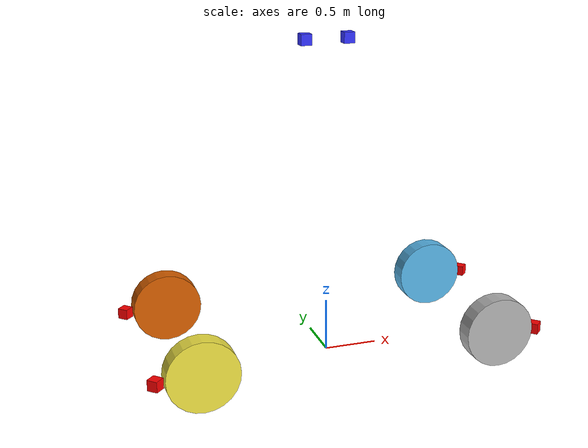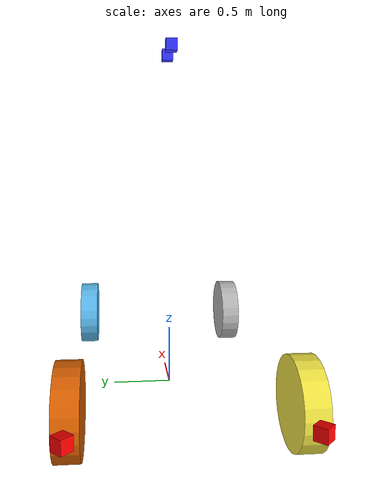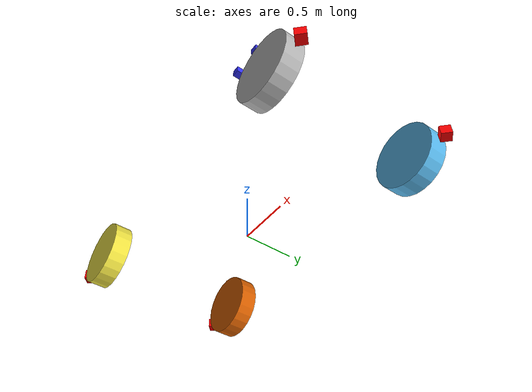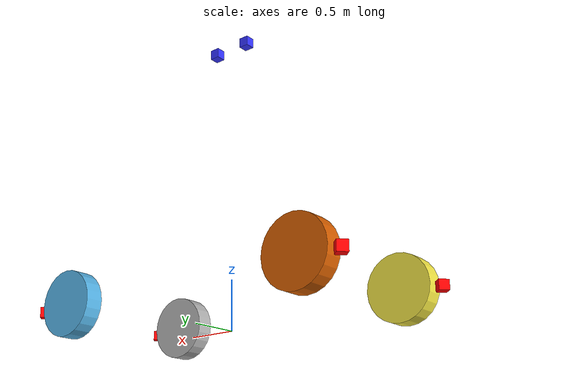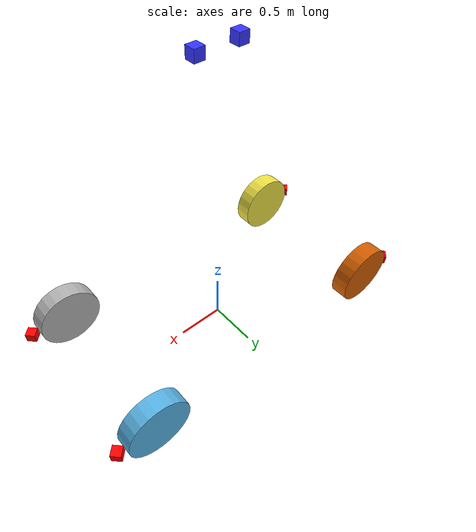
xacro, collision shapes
<?xml version="1.0"?>
<robot xmlns:xacro="http://www.ros.org/wiki/xacro" name="four_wheel_steering_robot">

  <xacro:property name="wheel_base" value="2.8"/>
  <xacro:property name="wheel_track" value="1.385"/>
  <xacro:property name="wheel_radius" value="0.3"/>
  <xacro:property name="max_steering_angle" value="0.31"/>
  <xacro:property name="min_steering_angle" value="-0.31"/>
  <xacro:property name="base_mass" value="1703.239"/> <!-- Mass value is incorrect as the intertias are wrong-->
  <xacro:property name="tyre_x" value="1.05"/>
  <xacro:property name="tyre_front_x" value="1.40"/>
  <xacro:property name="tyre_back_x" value="-1.40"/>
  <xacro:property name="tyre_y" value="0.6925"/>
  <xacro:property name="tyre_r" value="0"/>
  <xacro:property name="PI" value="3.1415926835897931"/>
  <!--Below is the thickness of the car's tyre-->
  <xacro:property name="tyre_length" value="0.18"/>

  <xacro:property name="tyre_radius" value="0.33"/>
  <xacro:property name="tyre_mass" value="20"/>

  <xacro:property name="tyre_mass_ixx" value="${((1/2)*tyre_mass*tyre_radius*tyre_radius)}"/>
  <xacro:property name="tyre_mass_iyy" value="${((1/12)*tyre_mass*tyre_length*tyre_length) + ((1/4)*tyre_mass*tyre_radius*tyre_radius)}"/>
  <xacro:property name="tyre_mass_izz" value="${((1/12)*tyre_mass*tyre_length*tyre_length) + ((1/4)*tyre_mass*tyre_radius*tyre_radius)}"/>
  <xacro:property name="tyre_mass_ixz" value="0.0"/>
  <xacro:property name="tyre_mass_ixy" value="0.0"/>
  <xacro:property name="tyre_mass_iyz" value="0.0"/>

  <xacro:property name="str_mass" value="50.00"/>
  <xacro:property name="str_length" value="0.05"/>
  <xacro:property name="str_radius" value="0.1"/>
  <xacro:property name="front_right_offset" value="0.05"/>
  <xacro:property name="str_mass_ixx" value="${((1/2)*str_mass*str_radius*str_radius)}"/>
  <xacro:property name="str_mass_iyy" value="${((1/12)*str_mass*str_length*str_length) + ((1/4)*str_mass*str_radius*str_radius)}"/>
  <xacro:property name="str_mass_izz" value="${((1/12)*str_mass*str_length*str_length) + ((1/4)*str_mass*str_radius*str_radius)}"/>

  <xacro:property name="str_angle" value="0.31"/>
  <xacro:property name="car_width" value="1.385"/>
  <xacro:property name="car_width_offset" value="0.05"/>

<xacro:property name="tyre_origin">
        <origin xyz="0 0 0" rpy="${PI/2} 0 0"/>
    </xacro:property>
    <xacro:property name="tyre_origin_2">
        <origin xyz="0 0 0" rpy="0 0 ${PI/2}"/>
    </xacro:property>
    <xacro:property name="tyre_origin_3">
        <origin xyz="0 0 0" rpy="0 0 ${-PI/2}"/>
    </xacro:property>

  <material name="white">
      <color rgba="1 1 1 1" />
  </material>

  <material name="orange">
      <color rgba="1 0.3 0.1 1"/>
  </material>

  <material name="blue">
      <color rgba="0.2 0.2 1 1"/>
  </material>

  <material name="black">
      <color rgba="0 0 0 1"/>
  </material>

  <material name="red">
      <color rgba="1 0 0 1"/>
  </material>

  <!-- Define robot links -->
  <link name="base_link">
    <visual>
      <origin xyz="0 0 0" rpy="0 0 -1.57079633"/>
      <geometry>
        <mesh filename="package://gen0_main/meshes/gen0_colored.dae"/>
      </geometry>
    </visual>
  </link>

  <joint name="inertial_joint" type="fixed">
      <parent link="base_link"/>
      <child link="main_mass"/>
      <origin xyz="0.0 0 0" rpy="0 0 0"/>
  </joint>

  <link name="main_mass" type="fixed">
      <parent link="inertial_joint"/>
      <inertial>
          <origin xyz="0.0 0.0 0.0" rpy="0 0 0"/> <!-- This is the center of mass of Car Body-->
          <mass value="${base_mass}"/>
          <inertia
            ixx="347.195805" ixy="-11.4914985" ixz="18.5070628"
            iyy="2330.10026" iyz="3.97814264"
            izz="2529.41827"/>
      </inertial>
  </link>

    <joint name="back_right_steering_joint" type="revolute">
        <parent link="base_link"/>
        <child link="back_right_steering_link"/>
        <origin xyz="${tyre_back_x} ${-(car_width/2 + 2*str_length)} ${tyre_radius}" rpy="0 0 0"/>
        <axis xyz="0 0 1"/>
        <limit effort="10000" lower="${-str_angle}" upper="${str_angle}" velocity="1000"/>
    </joint>

    <link name="back_right_steering_link">
        <collision>
            <xacro:insert_block name="tyre_origin"/>
	        <geometry>
                <cylinder length="${str_length}" radius="${str_radius}"/>
       		</geometry>
        </collision>
        <visual>
            <xacro:insert_block name="tyre_origin"/>
            <geometry>
                <cylinder length="${str_length}" radius="${str_radius}"/>
            </geometry>
        </visual>

        <inertial>
            <origin xyz="0 0 0" rpy="0 0 0"/>
            <mass value="${str_mass}"/>
            <inertia
            ixx="${str_mass_ixx}"  ixy="0.000000"  ixz="0.000000"
            iyy="${str_mass_iyy}"  iyz="0.000000"
            izz="${str_mass_izz}"/>
        </inertial>
    </link>

    <joint name="back_right_wheel_joint" type="continuous">
        <parent link="back_right_steering_link"/>
        <child link="back_right_wheel_link"/>
        <origin xyz="0.0 0.0 0.0" rpy="0 0 0"/>
        <axis xyz="0 1 0"/>
        <dynamics damping="0.01"/>
        <limit effort="10000" velocity="5000" />
        <joint_properties damping="10" friction="1.0" />
    </joint>

    <link name="back_right_wheel_link">
        <collision>
            <origin xyz="0 0 0" rpy="${PI/2} 0 0"/>
            <geometry>
                <cylinder length="${tyre_length}" radius="${tyre_radius}"/>
                <!--mesh filename="package://catvehicle/meshes/ford_escape_wheel.dae"/-->
            </geometry>
            <surface>
                <friction>
                    <ode>
                        <mu>10000000</mu>
                        <mu2>7000</mu2>
                    </ode>
                </friction>
                <bounce>
                    <restitution_coefficient>0.0</restitution_coefficient>
                </bounce>
                <contact>
                    <ode>
                        <soft_cfm>0.001</soft_cfm>
                        <soft_erp>0.5</soft_erp>
                        <kp>10000000</kp>
                        <kd>1</kd>
                    </ode>
                </contact>
            </surface>
        </collision>

        <visual>
            <!--origin xyz="0 0 0" rpy="${PI/2} 0 0"/-->
            <origin xyz="0 ${car_width_offset*2} 0.0" rpy="0 0 ${-PI/2}"/>
            <geometry>
                <mesh scale="1.2 1 1" filename="package://gen0_main/meshes/ezmile_gen0_wheel.obj"/>
            </geometry>
        </visual>

        <inertial>
            <origin xyz="0 0 0" rpy="0 0 0"/>
            <mass value="${tyre_mass}"/>
            <inertia
            ixx="${tyre_mass_ixx}"  ixy="${tyre_mass_ixy}"  ixz="${tyre_mass_ixz}"
            iyy="${tyre_mass_iyy}"  iyz="${tyre_mass_iyz}"
            izz="${tyre_mass_izz}"/>
        </inertial>
    </link>

    <!--Back Left Wheel -->

    <joint name="back_left_steering_joint" type="revolute">
        <parent link="base_link"/>
        <child link="back_left_steering_link"/>
        <origin xyz="${tyre_back_x} ${car_width/2 + 2*str_length} ${tyre_radius}" rpy="0 0 0"/>
        <axis xyz="0 0 1"/>
        <limit effort="10000" lower="${-str_angle}" upper="${str_angle}" velocity="1000"/>
    </joint>

    <link name="back_left_steering_link">
        <collision>
            <xacro:insert_block name="tyre_origin"/>
	        <geometry>
                <cylinder length="${str_length}" radius="${str_radius}"/>
       		</geometry>
        </collision>
        <visual>
            <xacro:insert_block name="tyre_origin"/>
            <geometry>
                <cylinder length="${str_length}" radius="${str_radius}"/>
            </geometry>
        </visual>

        <inertial>
            <origin xyz="0 0 0" rpy="0 0 0"/>
            <mass value="${str_mass}"/>
            <inertia
            ixx="${str_mass_ixx}"  ixy="0.000000"  ixz="0.000000"
            iyy="${str_mass_iyy}"  iyz="0.000000"
            izz="${str_mass_izz}"/>
        </inertial>
    </link>

    <joint name="back_left_wheel_joint" type="continuous">
        <parent link="back_left_steering_link"/>
        <child link="back_left_wheel_link"/>
        <origin xyz="0.0 0.0 0.0" rpy="0 0 0"/>
        <axis xyz="0 1 0"/>
        <dynamics damping="0.01"/>
        <limit effort="10000" velocity="5000" />
        <joint_properties damping="10" friction="1.0" />
    </joint>

    <link name="back_left_wheel_link">
        <collision>
            <origin xyz="0 0 0" rpy="${PI/2} 0 0"/>
            <geometry>
                <cylinder length="${tyre_length}" radius="${tyre_radius}"/>
                <!--mesh filename="package://ezmile_gen0/meshes/ford_escape_wheel.dae"/-->
            </geometry>
            <surface>
                <friction>
                    <ode>
                        <mu>10000000</mu>
                        <mu2>7000</mu2>
                    </ode>
                </friction>
                <bounce>
                    <restitution_coefficient>0.0</restitution_coefficient>
                </bounce>
                <contact>
                    <ode>
                        <soft_cfm>0.001</soft_cfm>
                        <soft_erp>0.5</soft_erp>
                        <kp>10000000</kp>
                        <kd>1</kd>
                    </ode>
                </contact>
            </surface>
        </collision>

        <visual>
            <!--origin xyz="0 0 0" rpy="${PI/2} 0 0"/-->
            <origin xyz="0 ${-car_width_offset*2} 0.0" rpy="0 0 ${PI/2}"/>
            <geometry>
                <!--cylinder length="${tyre_length}" radius="${tyre_radius}"/-->
                <mesh scale="1.2 1 1" filename="package://gen0_main/meshes/ezmile_gen0_wheel.obj"/>
            </geometry>
        </visual>

        <inertial>

            <origin xyz="0 0 0" rpy="0 0 0"/>
            <mass value="${tyre_mass}"/>
            <inertia
            ixx="${tyre_mass_ixx}"  ixy="${tyre_mass_ixy}"  ixz="${tyre_mass_ixz}"
            iyy="${tyre_mass_iyy}"  iyz="${tyre_mass_iyz}"
            izz="${tyre_mass_izz}"/>
        </inertial>
    </link>

    <!--Right Steering-->

    <joint name="front_right_steering_joint" type="revolute">
        <parent link="base_link"/>
        <child link="front_right_steering_link"/>
        <origin xyz="${tyre_front_x} ${-car_width/2 - 2*str_length} ${tyre_radius}" rpy="0 0 0"/>
        <axis xyz="0 0 1"/>
        <limit effort="10000" lower="${-str_angle}" upper="${str_angle}" velocity="1000"/>
    </joint>

    <link name="front_right_steering_link">
        <collision>
            <xacro:insert_block name="tyre_origin"/>
	        <geometry>
                <cylinder length="${str_length}" radius="${str_radius}"/>
       		</geometry>
        </collision>
        <visual>
            <xacro:insert_block name="tyre_origin"/>
            <geometry>
                <cylinder length="${str_length}" radius="${str_radius}"/>
            </geometry>
        </visual>

        <inertial>
            <origin xyz="0 0 0" rpy="0 0 0"/>
            <mass value="${str_mass}"/>
            <inertia
            ixx="${str_mass_ixx}"  ixy="0.000000"  ixz="0.000000"
            iyy="${str_mass_iyy}"  iyz="0.000000"
            izz="${str_mass_izz}"/>
        </inertial>
    </link>

    <!--Front Right Wheel-->
    <joint name="front_right_wheel_joint" type="continuous">
        <parent link="front_right_steering_link"/>
        <child link="front_right_wheel_link"/>
        <origin xyz="0 0 0" rpy="0 0 0"/>
        <axis xyz="0 1 0"/>
        <dynamics damping="0.01"/>
        <limit effort="10000" velocity="5000"/>
        <joint_properties damping="10" friction="1.0" />
    </joint>

    <link name="front_right_wheel_link">
        <collision>
            <origin xyz="0 0 0" rpy="${PI/2} 0 0"/>
            <!--origin xyz="0 0 0" rpy="0 0 ${-PI/2}"/-->
            <geometry>
                <cylinder length="${tyre_length}" radius="${tyre_radius}"/>
                <!--mesh filename="package://ezmile_gen0/meshes/ford_escape_wheel.dae"/-->
            </geometry>

            <surface>
                <friction>
                    <ode>
                        <mu>10000000</mu>
                        <mu2>7000</mu2>
                    </ode>
                </friction>
                <bounce>
                    <restitution_coefficient>0.0</restitution_coefficient>
                </bounce>
                <contact>
                    <ode>
                        <soft_cfm>0.001</soft_cfm>
                        <soft_erp>0.5</soft_erp>
                        <kp>10000000</kp>
                        <kd>1</kd>
                    </ode>
                </contact>
            </surface>
        </collision>

        <visual>
            <!--origin xyz="0 0 0" rpy="${PI/2} 0 0"/-->
            <origin xyz="0 ${car_width_offset*2} 0.0" rpy="0 0 ${-PI/2}"/>
            <geometry>
                <mesh scale="1.2 1 1" filename="package://gen0_main/meshes/ezmile_gen0_wheel.obj"/>
                </geometry>
        </visual>

        <inertial>
            <origin xyz="0 0 0" rpy="0 0 0"/>
            <mass value="${tyre_mass}"/>
            <inertia
            ixx="${tyre_mass_ixx}"  ixy="${tyre_mass_ixy}"  ixz="${tyre_mass_ixz}"
            iyy="${tyre_mass_iyy}"  iyz="${tyre_mass_iyz}"
            izz="${tyre_mass_izz}"/>
        </inertial>
    </link>

    <!--Left Steering-->
    <joint name="front_left_steering_joint" type="revolute">
        <parent link="base_link"/>
        <child link="front_left_steering_link"/>
        <origin xyz="${tyre_front_x} ${car_width/2 + 2*str_length} ${tyre_radius}" rpy="0 0 0"/>
        <axis xyz="0 0 1"/>
        <limit effort="10000" lower="${-str_angle}" upper="${str_angle}" velocity="1000"/>
    </joint>

    <link name="front_left_steering_link">
        <parent link="base_link"/>
        <collision>
            <xacro:insert_block name="tyre_origin"/>
            <geometry>
                <cylinder length="${str_length}" radius="${str_radius}"/>
            </geometry>
        </collision>
        <visual>
            <xacro:insert_block name="tyre_origin"/>
            <geometry>
                <cylinder length="${str_length}" radius="${str_radius}"/>
            </geometry>
        </visual>
        <inertial>
            <origin xyz="0 0 0" rpy="0 0 0"/>
            <mass value="${str_mass}"/>
            <inertia
            ixx="${str_mass_ixx}"  ixy="0.000000"  ixz="0.000000"
            iyy="${str_mass_iyy}"  iyz="0.000000"
            izz="${str_mass_izz}"/>
        </inertial>
    </link>

<!--Front Left Wheel-->

    <joint name="front_left_wheel_joint" type="continuous">
          <parent link="front_left_steering_link"/>
          <child link="front_left_wheel_link"/>
          <origin xyz="0 0 0" rpy="0 0 0"/>
          <axis xyz="0 1 0"/>
          <dynamics damping="0.01"/>
          <limit effort="10000" velocity="5000" />
          <joint_properties damping="10" friction="1.0" />

    </joint>

    <link name="front_left_wheel_link">
        <parent link="front_left_wheel_joint"/>
        <collision>
            <origin xyz="0 0 0" rpy="${PI/2} 0 0"/>
            <!--origin xyz="0 0 0" rpy="0 0 ${PI/2}"/-->
            <geometry>
                <cylinder length="${tyre_length}" radius="${tyre_radius}"/>
                <!--mesh filename="package://ezmile_gen0/meshes/ford_escape_wheel.dae"/-->
            </geometry>
            <surface>
                <friction>
                    <ode>
                        <mu>10000000</mu>
                        <mu2>7000</mu2>
                    </ode>
                </friction>
                <bounce>
                    <restitution_coefficient>0.0</restitution_coefficient>
                </bounce>
                <contact>
                    <ode>
                        <soft_cfm>0.001</soft_cfm>
                        <soft_erp>0.5</soft_erp>
                        <kp>10000000</kp>
                        <kd>1</kd>
                    </ode>
                </contact>
            </surface>
        </collision>

        <visual>
            <!--origin xyz="0 0 0" rpy="${PI/2} 0 0"/-->
            <origin xyz="0 ${-car_width_offset*2} 0.0" rpy="0 0 ${PI/2}"/>
            <geometry>
            <!--cylinder length="${tyre_length}" radius="${tyre_radius}"/-->
            <mesh scale="1.2 1 1" filename="package://gen0_main/meshes/ezmile_gen0_wheel.obj"/>
            </geometry>
        </visual>

        <inertial>
            <origin xyz="0 0 0" rpy="0 0 0"/>
            <mass value="${tyre_mass}"/>
            <inertia
            ixx="${tyre_mass_ixx}"  ixy="${tyre_mass_ixy}"  ixz="${tyre_mass_ixz}"
            iyy="${tyre_mass_iyy}"  iyz="${tyre_mass_iyz}"
            izz="${tyre_mass_izz}"/>
        </inertial>
    </link>

<!-- Localization Lidars -->

  <joint name="top_lidar_front_joint" type="fixed">
    <axis xyz="0 1 0" />
    <origin xyz="0.2 0 3.0" rpy="0 0 0"/>
    <parent link="base_link"/>
    <child link="top_lidar_front_link"/>
  </joint>

  <link name="top_lidar_front_link">
    <collision>
      <origin xyz="0 0 0" rpy="0 0 0"/>
      <geometry>
    <box size="0.1 0.1 0.1"/>
      </geometry>
    </collision>

    <visual>
      <origin xyz="0 0 0" rpy="0 0 0"/>
      <geometry>
        <box size="0.1 0.1 0.1"/>
      </geometry>
         <material name="blue"/>
    </visual>

    <inertial>
      <mass value="1e-5" />
      <origin xyz="0 0 0" rpy="0 0 0"/>
      <inertia ixx="1e-6" ixy="0" ixz="0" iyy="1e-6" iyz="0" izz="1e-6" />
    </inertial>
  </link>

  <joint name="top_lidar_rear_joint" type="fixed">
    <axis xyz="0 1 0" />
    <origin xyz="-0.2 0 3.0" rpy="0 0 3.14"/>
    <parent link="base_link"/>
    <child link="top_lidar_rear_link"/>
  </joint>

  <link name="top_lidar_rear_link">
    <collision>
      <origin xyz="0 0 0" rpy="0 0 0"/>
      <geometry>
    <box size="0.1 0.1 0.1"/>
      </geometry>
    </collision>

    <visual>
      <origin xyz="0 0 0" rpy="0 0 0"/>
      <geometry>
        <box size="0.1 0.1 0.1"/>
      </geometry>
         <material name="blue"/>
    </visual>

    <inertial>
      <mass value="1e-5" />
      <origin xyz="0 0 0" rpy="0 0 0"/>
      <inertia ixx="1e-6" ixy="0" ixz="0" iyy="1e-6" iyz="0" izz="1e-6" />
    </inertial>
  </link>

<!-- Navigation Lidars -->

<joint name="sick_lidar_fl_joint" type="fixed">
    <axis xyz="0 1 0" />
    <origin xyz="1.8 0.8 0.3" rpy="${PI} 0 ${PI/4}"/>
    <parent link="base_link"/>
    <child link="sick_lidar_fl_link"/>
  </joint>

  <link name="sick_lidar_fl_link">
    <collision>
      <origin xyz="0 0 0" rpy="0 0 0"/>
      <geometry>
    <box size="0.1 0.1 0.1"/>
      </geometry>
    </collision>

    <visual>
      <origin xyz="0 0 0" rpy="0 0 0"/>
      <geometry>
        <cylinder length="0.1" radius="0.03"/>
      </geometry>
         <material name="red"/>
    </visual>

    <inertial>
      <mass value="1e-5" />
      <origin xyz="0 0 0" rpy="0 0 0"/>
      <inertia ixx="1e-6" ixy="0" ixz="0" iyy="1e-6" iyz="0" izz="1e-6" />
    </inertial>
  </link>

<joint name="sick_lidar_fr_joint" type="fixed">
    <axis xyz="0 1 0" />
    <origin xyz="1.8 -0.8 0.3" rpy="${PI} 0 ${-PI/4}"/>
    <parent link="base_link"/>
    <child link="sick_lidar_fr_link"/>
  </joint>

  <link name="sick_lidar_fr_link">
    <collision>
      <origin xyz="0 0 0" rpy="0 0 0"/>
      <geometry>
    <box size="0.1 0.1 0.1"/>
      </geometry>
    </collision>

    <visual>
      <origin xyz="0 0 0" rpy="0 0 0"/>
      <geometry>
       <cylinder length="0.1" radius="0.03"/>
      </geometry>
        <material name="red"/>
    </visual>

    <inertial>
      <mass value="1e-5" />
      <origin xyz="0 0 0" rpy="0 0 0"/>
      <inertia ixx="1e-6" ixy="0" ixz="0" iyy="1e-6" iyz="0" izz="1e-6" />
    </inertial>
  </link>

  <joint name="sick_lidar_rl_joint" type="fixed">
    <axis xyz="0 1 0" />
    <origin xyz="-1.8 0.8 0.3" rpy="${PI} 0 ${3*PI/4}"/>
    <parent link="base_link"/>
    <child link="sick_lidar_rl_link"/>
  </joint>

  <link name="sick_lidar_rl_link">
    <collision>
      <origin xyz="0 0 0" rpy="0 0 0"/>
      <geometry>
    <box size="0.1 0.1 0.1"/>
      </geometry>
    </collision>

    <visual>
      <origin xyz="0 0 0" rpy="0 0 0"/>
      <geometry>
        <cylinder length="0.1" radius="0.03"/>
      </geometry>
        <material name="red"/>
    </visual>

    <inertial>
      <mass value="1e-5" />
      <origin xyz="0 0 0" rpy="0 0 0"/>
      <inertia ixx="1e-6" ixy="0" ixz="0" iyy="1e-6" iyz="0" izz="1e-6" />
    </inertial>
  </link>

    <joint name="sick_lidar_rr_joint" type="fixed">
    <axis xyz="0 1 0" />
    <origin xyz="-1.8 -0.8 0.3" rpy="${PI} 0 ${-3*PI/4}"/>
    <parent link="base_link"/>
    <child link="sick_lidar_rr_link"/>
  </joint>

  <link name="sick_lidar_rr_link">
    <collision>
      <origin xyz="0 0 0" rpy="0 0 0"/>
      <geometry>
    <box size="0.1 0.1 0.1"/>
      </geometry>
    </collision>

    <visual>
      <origin xyz="0 0 0" rpy="0 0 0"/>
      <geometry>
        <cylinder length="0.1" radius="0.03"/>
      </geometry>
        <material name="red"/>
    </visual>

    <inertial>
      <mass value="1e-5" />
      <origin xyz="0 0 0" rpy="0 0 0"/>
      <inertia ixx="1e-6" ixy="0" ixz="0" iyy="1e-6" iyz="0" izz="1e-6" />
    </inertial>
  </link>

<!-- COLORS -->

   <material name="Red"> -->
    <color rgba="${255/255} ${0} ${0} 1.0"/>
  </material>

   <material name="Blue"> -->
    <color rgba="${0} ${0} ${255/255} 1.0"/>
  </material>

</robot>
